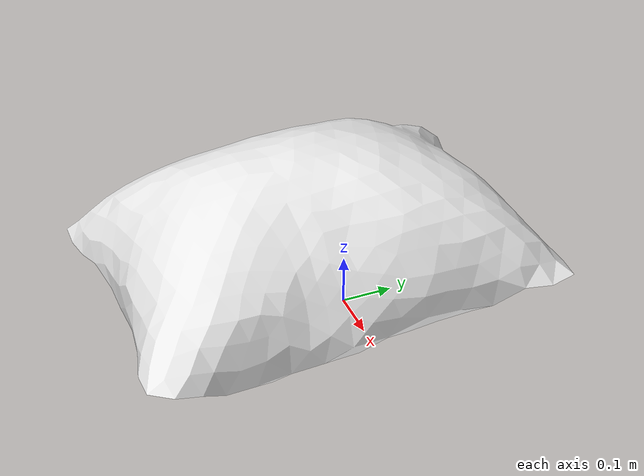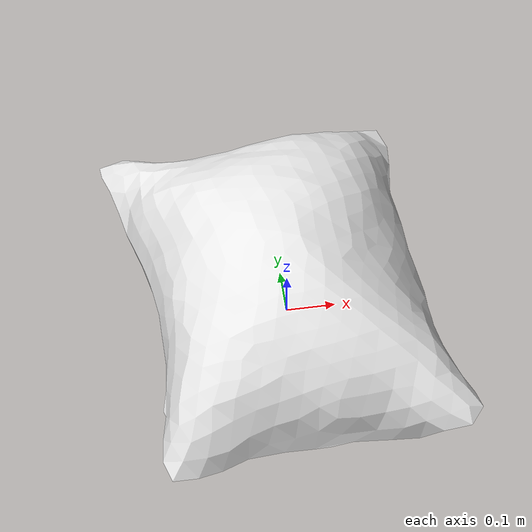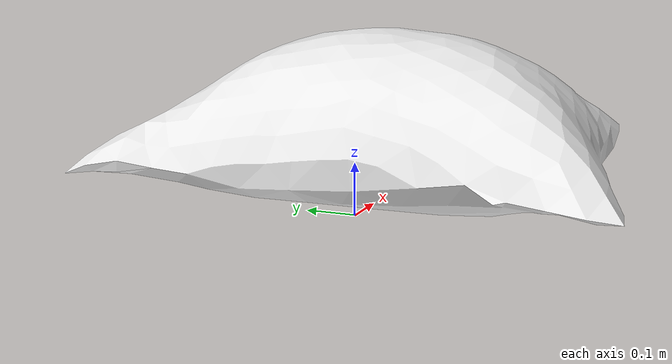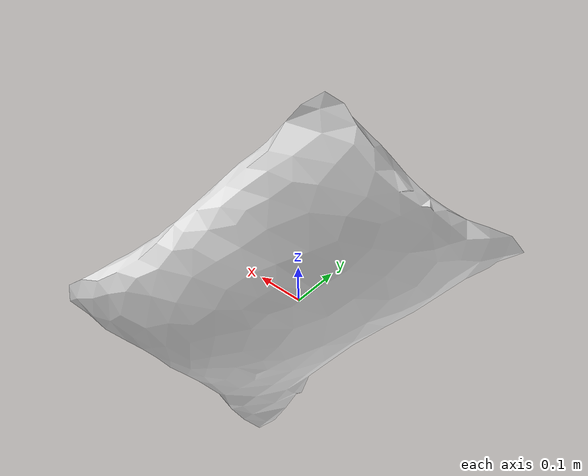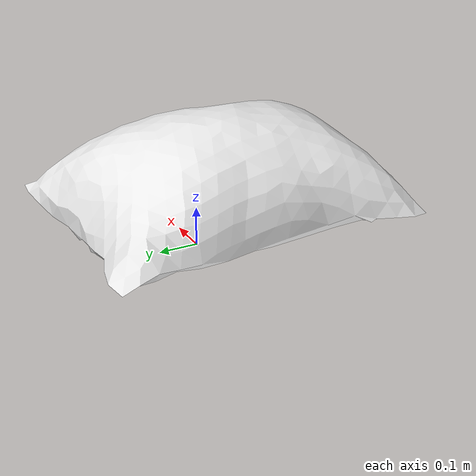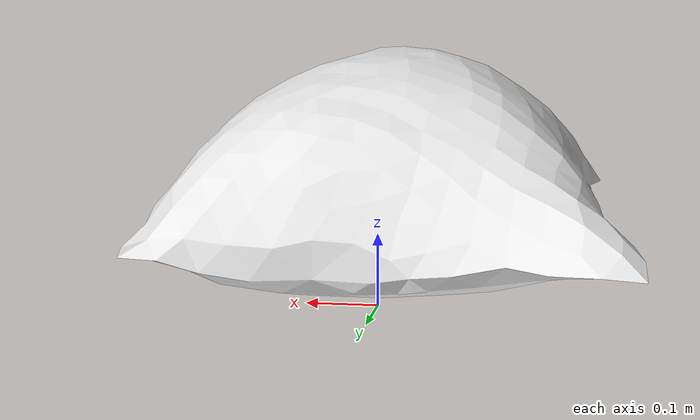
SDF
<?xml version="1.0" ?><sdf version="1.5"><model name="coffee-sack1">
<link name="link">
<pose>0 0 0 0 0 0</pose>
<inertial>
<pose>-0.0162525 -0.056953 0.194139 0 0 0</pose>
<mass>70</mass>
<inertia>
<ixx>4.52449</ixx>
<ixy>0</ixy><iyy>3.14254</iyy>
<ixz>0</ixz><iyz>0</iyz><izz>6.54678</izz>
</inertia>
</inertial>
<visual name="visual">
<pose>0 0 0 0 0 0</pose>
<geometry><mesh><uri>model://coffee-sack1/meshes/coffee-sack1.dae</uri></mesh></geometry>
<material><script><uri>file://media/materials/scripts/gazebo.material</uri><name>Gazebo/WhiteGlow</name></script></material></visual>
<collision name="collision"><pose>0 0 0 0 0 0</pose><geometry><mesh><uri>model://coffee-sack1/meshes/coffee-sack1.dae</uri></mesh></geometry>
<surface><friction><ode><mu>1.000000</mu><mu2>1.000000</mu2></ode></friction></surface>
</collision></link></model></sdf>
